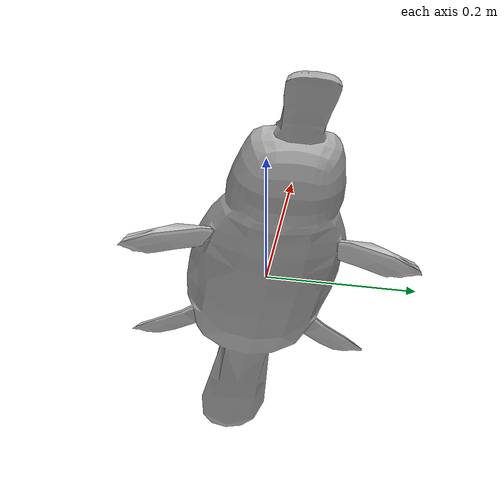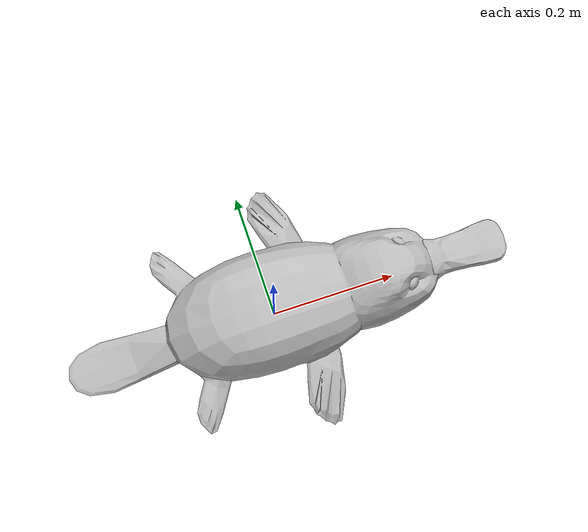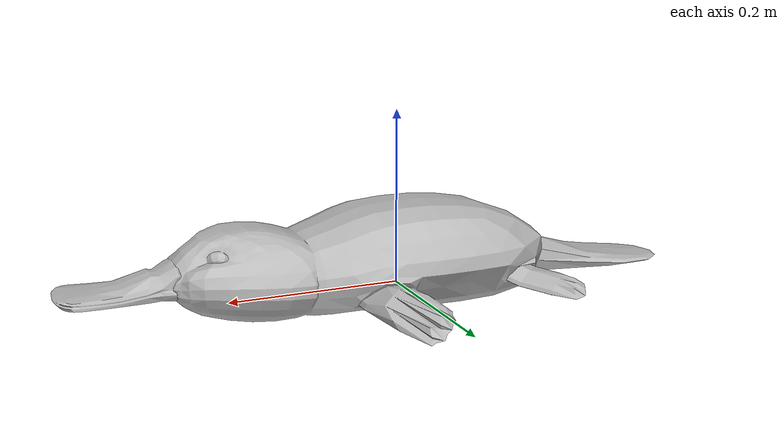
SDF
<?xml version="1.0" ?>
<sdf version="1.6">
  <model name="platypus">
    <pose>0 0 0 0 0 0</pose>
    <link name="link">
      <inertial>
        <pose>0 0 -0.3 0 0 0</pose>
        <mass>20</mass>
        <inertia>
          <ixx>0.24683</ixx>
          <ixy>0</ixy>
          <ixz>0</ixz>
          <iyy>0.98016</iyy>
          <iyz>0</iyz>
          <izz>1.14166</izz>
        </inertia>
      </inertial>
      <collision name="platypus_collision">
        <pose>0.02 0 0.05 0 0 0</pose>
        <geometry>
          <box>
            <size>0.75 0.35 0.16</size>
          </box>
        </geometry>
        <max_contacts>10</max_contacts>
        <surface>
          <contact>
            <ode/>
          </contact>
          <bounce/>
          <friction>
            <torsional>
              <ode/>
            </torsional>
            <ode/>
          </friction>
        </surface>
      </collision>
      <visual name="platypus_visual">
        <geometry>
          <mesh>
            <uri>model://platypus/meshes/platypus.dae</uri>
          </mesh>
        </geometry>
      </visual>
      <self_collide>0</self_collide>
      <enable_wind>0</enable_wind>
      <kinematic>0</kinematic>
    </link>
  </model>
</sdf>
